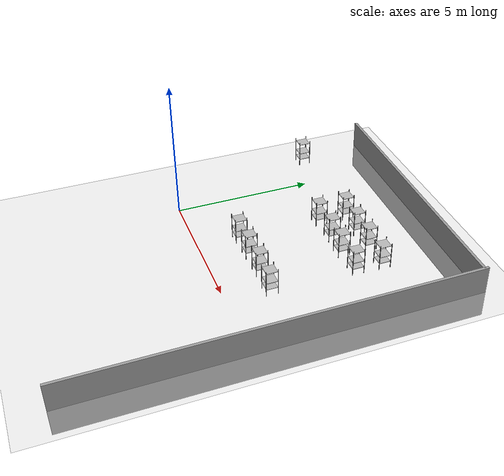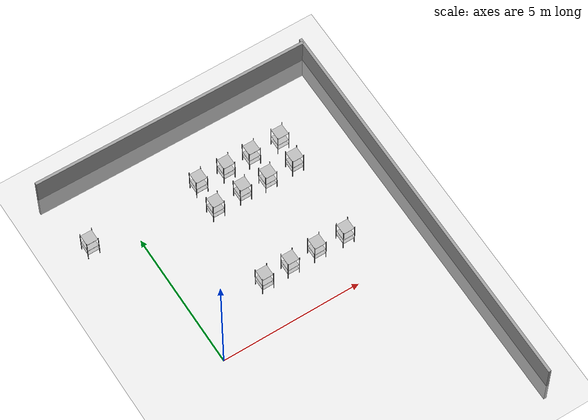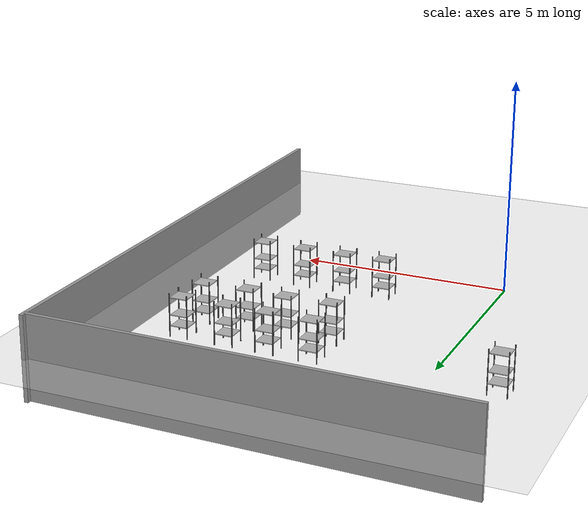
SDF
<sdf version="1.7">
 <world name="default">
  <model name="ground_plane">
   <static>1</static>
   <link name="link">
    <collision name="collision">
     <geometry><plane><normal>0 0 1</normal><size>100 100</size></plane></geometry>
     <surface><friction><ode><mu>100</mu><mu2>50</mu2></ode></friction></surface>
    </collision>
    <visual name="visual">
     <cast_shadows>0</cast_shadows>
     <geometry><plane><normal>0 0 1</normal><size>100 100</size></plane></geometry>
     <material>
      <script><uri>file://media/materials/scripts/gazebo.material</uri><name>Gazebo/Grey</name></script>
     </material>
    </visual>
   </link>
  </model>
  <model name="wall_1_clone_clone_clone_0_clone">
   <link name="wall">
    <visual name="visual">
     <geometry><box><size>14.1649 0.1 2</size></box></geometry>
     <material>
      <ambient>0.6 0.6 0.6 1</ambient>
      <shader type="pixel"/>
      <script><name>ModelPreview_1::wall::visual_MATERIAL_</name><uri>__default__</uri></script>
     </material>
    </visual>
    <collision name="collision">
     <geometry><box><size>14.1649 0.1 2</size></box></geometry>
     <surface>
      <friction>
       <ode><mu>1</mu><mu2>1</mu2><fdir1>0 0 0</fdir1><slip1>0</slip1><slip2>0</slip2></ode>
       <torsional>
        <coefficient>1</coefficient>
        <patch_radius>0</patch_radius>
        <surface_radius>0</surface_radius>
        <use_patch_radius>1</use_patch_radius>
        <ode><slip>0</slip></ode>
       </torsional>
      </friction>
      <bounce><restitution_coefficient>0</restitution_coefficient><threshold>1e+06</threshold></bounce>
      <contact>
       <collide_without_contact>0</collide_without_contact>
       <collide_without_contact_bitmask>1</collide_without_contact_bitmask>
       <collide_bitmask>1</collide_bitmask>
       <ode>
        <soft_cfm>0</soft_cfm>
        <soft_erp>0.2</soft_erp>
        <kp>1e+13</kp>
        <kd>1</kd>
        <max_vel>0.01</max_vel>
        <min_depth>0</min_depth>
       </ode>
       <bullet>
        <split_impulse>1</split_impulse>
        <split_impulse_penetration_threshold>-0.01</split_impulse_penetration_threshold>
        <soft_cfm>0</soft_cfm>
        <soft_erp>0.2</soft_erp>
        <kp>1e+13</kp>
        <kd>1</kd>
       </bullet>
      </contact>
     </surface>
    </collision>
   </link>
   <static>1</static>
   <pose>8 1 0 0 0 -1.5708</pose>
  </model>
  <model name="wall_1_clone_clone_clone_0_clone_0">
   <link name="wall">
    <visual name="visual">
     <geometry><box><size>10 0.1 2</size></box></geometry>
     <material>
      <ambient>0.6 0.6 0.6 1</ambient>
      <shader type="pixel"/>
      <script><name>ModelPreview_1::wall::visual_MATERIAL_</name><uri>__default__</uri></script>
     </material>
    </visual>
    <collision name="collision">
     <geometry><box><size>10 0.1 2</size></box></geometry>
     <surface>
      <friction>
       <ode><mu>1</mu><mu2>1</mu2><fdir1>0 0 0</fdir1><slip1>0</slip1><slip2>0</slip2></ode>
       <torsional>
        <coefficient>1</coefficient>
        <patch_radius>0</patch_radius>
        <surface_radius>0</surface_radius>
        <use_patch_radius>1</use_patch_radius>
        <ode><slip>0</slip></ode>
       </torsional>
      </friction>
      <bounce><restitution_coefficient>0</restitution_coefficient><threshold>1e+06</threshold></bounce>
      <contact>
       <collide_without_contact>0</collide_without_contact>
       <collide_without_contact_bitmask>1</collide_without_contact_bitmask>
       <collide_bitmask>1</collide_bitmask>
       <ode>
        <soft_cfm>0</soft_cfm>
        <soft_erp>0.2</soft_erp>
        <kp>1e+13</kp>
        <kd>1</kd>
        <max_vel>0.01</max_vel>
        <min_depth>0</min_depth>
       </ode>
       <bullet>
        <split_impulse>1</split_impulse>
        <split_impulse_penetration_threshold>-0.01</split_impulse_penetration_threshold>
        <soft_cfm>0</soft_cfm>
        <soft_erp>0.2</soft_erp>
        <kp>1e+13</kp>
        <kd>1</kd>
       </bullet>
      </contact>
     </surface>
    </collision>
   </link>
   <static>1</static>
   <pose>3 8 0 0 0 -0.012854</pose>
  </model>
  <model name="square_shelf_0_clone_7">
   <link name="link">
    <visual name="bottom_shelf_visual">
     <geometry><box><size>0.4 0.4 0.02</size></box></geometry>
     <pose>0 0 0.25 0 -0 0</pose>
     <material><ambient>0.6 0.6 0.6 1</ambient><diffuse>0.7 0.7 0.7 1</diffuse></material>
    </visual>
    <collision name="bottom_shelf_collision">
     <geometry><box><size>0.4 0.4 0.02</size></box></geometry>
     <pose>0 0 0.25 0 -0 0</pose>
    </collision>
    <visual name="middle_shelf_visual">
     <geometry><box><size>0.4 0.4 0.02</size></box></geometry>
     <pose>0 0 0.5 0 -0 0</pose>
     <material><ambient>0.6 0.6 0.6 1</ambient><diffuse>0.7 0.7 0.7 1</diffuse></material>
    </visual>
    <collision name="middle_shelf_collision">
     <geometry><box><size>0.4 0.4 0.02</size></box></geometry>
     <pose>0 0 0.5 0 -0 0</pose>
    </collision>
    <visual name="top_shelf_visual">
     <geometry><box><size>0.4 0.4 0.02</size></box></geometry>
     <pose>0 0 0.9 0 -0 0</pose>
     <material><ambient>0.6 0.6 0.6 1</ambient><diffuse>0.7 0.7 0.7 1</diffuse></material>
    </visual>
    <collision name="top_shelf_collision">
     <geometry><box><size>0.4 0.4 0.02</size></box></geometry>
     <pose>0 0 0.9 0 -0 0</pose>
    </collision>
    <visual name="left_support_visual">
     <geometry><box><size>0.02 0.02 1</size></box></geometry>
     <pose>-0.21 -0.21 0.5 0 -0 0</pose>
     <material><ambient>0.3 0.3 0.3 1</ambient><diffuse>0.3 0.3 0.3 1</diffuse></material>
    </visual>
    <collision name="left_support_collision">
     <geometry><box><size>0.02 0.02 1</size></box></geometry>
     <pose>-0.21 -0.21 0.5 0 -0 0</pose>
    </collision>
    <visual name="right_support_visual">
     <geometry><box><size>0.02 0.02 1</size></box></geometry>
     <pose>0.21 -0.21 0.5 0 -0 0</pose>
     <material><ambient>0.3 0.3 0.3 1</ambient><diffuse>0.3 0.3 0.3 1</diffuse></material>
    </visual>
    <collision name="right_support_collision">
     <geometry><box><size>0.02 0.02 1</size></box></geometry>
     <pose>0.21 -0.21 0.5 0 -0 0</pose>
    </collision>
    <visual name="front_left_support_visual">
     <geometry><box><size>0.02 0.02 1</size></box></geometry>
     <pose>-0.21 0.21 0.5 0 -0 0</pose>
     <material><ambient>0.3 0.3 0.3 1</ambient><diffuse>0.3 0.3 0.3 1</diffuse></material>
    </visual>
    <collision name="front_left_support_collision">
     <geometry><box><size>0.02 0.02 1</size></box></geometry>
     <pose>-0.21 0.21 0.5 0 -0 0</pose>
    </collision>
    <visual name="front_right_support_visual">
     <geometry><box><size>0.02 0.02 1</size></box></geometry>
     <pose>0.21 0.21 0.5 0 -0 0</pose>
     <material><ambient>0.3 0.3 0.3 1</ambient><diffuse>0.3 0.3 0.3 1</diffuse></material>
    </visual>
    <collision name="front_right_support_collision">
     <geometry><box><size>0.02 0.02 1</size></box></geometry>
     <pose>0.21 0.21 0.5 0 -0 0</pose>
    </collision>
    <inertial>
     <inertia><ixx>1</ixx><ixy>0</ixy><ixz>0</ixz><iyy>1</iyy><iyz>0</iyz><izz>1</izz></inertia>
     <mass>1</mass>
    </inertial>
   </link>
   <pose>-1.52316 5.53311 0.01 0 -0 0</pose>
  </model>
  <model name="square_shelf_0_clone_14">
   <link name="link">
    <visual name="bottom_shelf_visual">
     <geometry><box><size>0.4 0.4 0.02</size></box></geometry>
     <pose>0 0 0.25 0 -0 0</pose>
     <material><ambient>0.6 0.6 0.6 1</ambient><diffuse>0.7 0.7 0.7 1</diffuse></material>
    </visual>
    <collision name="bottom_shelf_collision">
     <geometry><box><size>0.4 0.4 0.02</size></box></geometry>
     <pose>0 0 0.25 0 -0 0</pose>
    </collision>
    <visual name="middle_shelf_visual">
     <geometry><box><size>0.4 0.4 0.02</size></box></geometry>
     <pose>0 0 0.5 0 -0 0</pose>
     <material><ambient>0.6 0.6 0.6 1</ambient><diffuse>0.7 0.7 0.7 1</diffuse></material>
    </visual>
    <collision name="middle_shelf_collision">
     <geometry><box><size>0.4 0.4 0.02</size></box></geometry>
     <pose>0 0 0.5 0 -0 0</pose>
    </collision>
    <visual name="top_shelf_visual">
     <geometry><box><size>0.4 0.4 0.02</size></box></geometry>
     <pose>0 0 0.9 0 -0 0</pose>
     <material><ambient>0.6 0.6 0.6 1</ambient><diffuse>0.7 0.7 0.7 1</diffuse></material>
    </visual>
    <collision name="top_shelf_collision">
     <geometry><box><size>0.4 0.4 0.02</size></box></geometry>
     <pose>0 0 0.9 0 -0 0</pose>
    </collision>
    <visual name="left_support_visual">
     <geometry><box><size>0.02 0.02 1</size></box></geometry>
     <pose>-0.21 -0.21 0.5 0 -0 0</pose>
     <material><ambient>0.3 0.3 0.3 1</ambient><diffuse>0.3 0.3 0.3 1</diffuse></material>
    </visual>
    <collision name="left_support_collision">
     <geometry><box><size>0.02 0.02 1</size></box></geometry>
     <pose>-0.21 -0.21 0.5 0 -0 0</pose>
    </collision>
    <visual name="right_support_visual">
     <geometry><box><size>0.02 0.02 1</size></box></geometry>
     <pose>0.21 -0.21 0.5 0 -0 0</pose>
     <material><ambient>0.3 0.3 0.3 1</ambient><diffuse>0.3 0.3 0.3 1</diffuse></material>
    </visual>
    <collision name="right_support_collision">
     <geometry><box><size>0.02 0.02 1</size></box></geometry>
     <pose>0.21 -0.21 0.5 0 -0 0</pose>
    </collision>
    <visual name="front_left_support_visual">
     <geometry><box><size>0.02 0.02 1</size></box></geometry>
     <pose>-0.21 0.21 0.5 0 -0 0</pose>
     <material><ambient>0.3 0.3 0.3 1</ambient><diffuse>0.3 0.3 0.3 1</diffuse></material>
    </visual>
    <collision name="front_left_support_collision">
     <geometry><box><size>0.02 0.02 1</size></box></geometry>
     <pose>-0.21 0.21 0.5 0 -0 0</pose>
    </collision>
    <visual name="front_right_support_visual">
     <geometry><box><size>0.02 0.02 1</size></box></geometry>
     <pose>0.21 0.21 0.5 0 -0 0</pose>
     <material><ambient>0.3 0.3 0.3 1</ambient><diffuse>0.3 0.3 0.3 1</diffuse></material>
    </visual>
    <collision name="front_right_support_collision">
     <geometry><box><size>0.02 0.02 1</size></box></geometry>
     <pose>0.21 0.21 0.5 0 -0 0</pose>
    </collision>
    <inertial>
     <inertia><ixx>1</ixx><ixy>0</ixy><ixz>0</ixz><iyy>1</iyy><iyz>0</iyz><izz>1</izz></inertia>
     <mass>1</mass>
    </inertial>
   </link>
   <pose>2.45961 1.52485 0.009999 1e-06 -0 0</pose>
  </model>
  <model name="square_shelf_0_clone_15">
   <link name="link">
    <visual name="bottom_shelf_visual">
     <geometry><box><size>0.4 0.4 0.02</size></box></geometry>
     <pose>0 0 0.25 0 -0 0</pose>
     <material><ambient>0.6 0.6 0.6 1</ambient><diffuse>0.7 0.7 0.7 1</diffuse></material>
    </visual>
    <collision name="bottom_shelf_collision">
     <geometry><box><size>0.4 0.4 0.02</size></box></geometry>
     <pose>0 0 0.25 0 -0 0</pose>
    </collision>
    <visual name="middle_shelf_visual">
     <geometry><box><size>0.4 0.4 0.02</size></box></geometry>
     <pose>0 0 0.5 0 -0 0</pose>
     <material><ambient>0.6 0.6 0.6 1</ambient><diffuse>0.7 0.7 0.7 1</diffuse></material>
    </visual>
    <collision name="middle_shelf_collision">
     <geometry><box><size>0.4 0.4 0.02</size></box></geometry>
     <pose>0 0 0.5 0 -0 0</pose>
    </collision>
    <visual name="top_shelf_visual">
     <geometry><box><size>0.4 0.4 0.02</size></box></geometry>
     <pose>0 0 0.9 0 -0 0</pose>
     <material><ambient>0.6 0.6 0.6 1</ambient><diffuse>0.7 0.7 0.7 1</diffuse></material>
    </visual>
    <collision name="top_shelf_collision">
     <geometry><box><size>0.4 0.4 0.02</size></box></geometry>
     <pose>0 0 0.9 0 -0 0</pose>
    </collision>
    <visual name="left_support_visual">
     <geometry><box><size>0.02 0.02 1</size></box></geometry>
     <pose>-0.21 -0.21 0.5 0 -0 0</pose>
     <material><ambient>0.3 0.3 0.3 1</ambient><diffuse>0.3 0.3 0.3 1</diffuse></material>
    </visual>
    <collision name="left_support_collision">
     <geometry><box><size>0.02 0.02 1</size></box></geometry>
     <pose>-0.21 -0.21 0.5 0 -0 0</pose>
    </collision>
    <visual name="right_support_visual">
     <geometry><box><size>0.02 0.02 1</size></box></geometry>
     <pose>0.21 -0.21 0.5 0 -0 0</pose>
     <material><ambient>0.3 0.3 0.3 1</ambient><diffuse>0.3 0.3 0.3 1</diffuse></material>
    </visual>
    <collision name="right_support_collision">
     <geometry><box><size>0.02 0.02 1</size></box></geometry>
     <pose>0.21 -0.21 0.5 0 -0 0</pose>
    </collision>
    <visual name="front_left_support_visual">
     <geometry><box><size>0.02 0.02 1</size></box></geometry>
     <pose>-0.21 0.21 0.5 0 -0 0</pose>
     <material><ambient>0.3 0.3 0.3 1</ambient><diffuse>0.3 0.3 0.3 1</diffuse></material>
    </visual>
    <collision name="front_left_support_collision">
     <geometry><box><size>0.02 0.02 1</size></box></geometry>
     <pose>-0.21 0.21 0.5 0 -0 0</pose>
    </collision>
    <visual name="front_right_support_visual">
     <geometry><box><size>0.02 0.02 1</size></box></geometry>
     <pose>0.21 0.21 0.5 0 -0 0</pose>
     <material><ambient>0.3 0.3 0.3 1</ambient><diffuse>0.3 0.3 0.3 1</diffuse></material>
    </visual>
    <collision name="front_right_support_collision">
     <geometry><box><size>0.02 0.02 1</size></box></geometry>
     <pose>0.21 0.21 0.5 0 -0 0</pose>
    </collision>
    <inertial>
     <inertia><ixx>1</ixx><ixy>0</ixy><ixz>0</ixz><iyy>1</iyy><iyz>0</iyz><izz>1</izz></inertia>
     <mass>1</mass>
    </inertial>
   </link>
   <pose>3.42871 1.55032 0.009999 1e-06 1e-06 0</pose>
  </model>
  <model name="square_shelf_0_clone_18">
   <link name="link">
    <visual name="bottom_shelf_visual">
     <geometry><box><size>0.4 0.4 0.02</size></box></geometry>
     <pose>0 0 0.25 0 -0 0</pose>
     <material><ambient>0.6 0.6 0.6 1</ambient><diffuse>0.7 0.7 0.7 1</diffuse></material>
    </visual>
    <collision name="bottom_shelf_collision">
     <geometry><box><size>0.4 0.4 0.02</size></box></geometry>
     <pose>0 0 0.25 0 -0 0</pose>
    </collision>
    <visual name="middle_shelf_visual">
     <geometry><box><size>0.4 0.4 0.02</size></box></geometry>
     <pose>0 0 0.5 0 -0 0</pose>
     <material><ambient>0.6 0.6 0.6 1</ambient><diffuse>0.7 0.7 0.7 1</diffuse></material>
    </visual>
    <collision name="middle_shelf_collision">
     <geometry><box><size>0.4 0.4 0.02</size></box></geometry>
     <pose>0 0 0.5 0 -0 0</pose>
    </collision>
    <visual name="top_shelf_visual">
     <geometry><box><size>0.4 0.4 0.02</size></box></geometry>
     <pose>0 0 0.9 0 -0 0</pose>
     <material><ambient>0.6 0.6 0.6 1</ambient><diffuse>0.7 0.7 0.7 1</diffuse></material>
    </visual>
    <collision name="top_shelf_collision">
     <geometry><box><size>0.4 0.4 0.02</size></box></geometry>
     <pose>0 0 0.9 0 -0 0</pose>
    </collision>
    <visual name="left_support_visual">
     <geometry><box><size>0.02 0.02 1</size></box></geometry>
     <pose>-0.21 -0.21 0.5 0 -0 0</pose>
     <material><ambient>0.3 0.3 0.3 1</ambient><diffuse>0.3 0.3 0.3 1</diffuse></material>
    </visual>
    <collision name="left_support_collision">
     <geometry><box><size>0.02 0.02 1</size></box></geometry>
     <pose>-0.21 -0.21 0.5 0 -0 0</pose>
    </collision>
    <visual name="right_support_visual">
     <geometry><box><size>0.02 0.02 1</size></box></geometry>
     <pose>0.21 -0.21 0.5 0 -0 0</pose>
     <material><ambient>0.3 0.3 0.3 1</ambient><diffuse>0.3 0.3 0.3 1</diffuse></material>
    </visual>
    <collision name="right_support_collision">
     <geometry><box><size>0.02 0.02 1</size></box></geometry>
     <pose>0.21 -0.21 0.5 0 -0 0</pose>
    </collision>
    <visual name="front_left_support_visual">
     <geometry><box><size>0.02 0.02 1</size></box></geometry>
     <pose>-0.21 0.21 0.5 0 -0 0</pose>
     <material><ambient>0.3 0.3 0.3 1</ambient><diffuse>0.3 0.3 0.3 1</diffuse></material>
    </visual>
    <collision name="front_left_support_collision">
     <geometry><box><size>0.02 0.02 1</size></box></geometry>
     <pose>-0.21 0.21 0.5 0 -0 0</pose>
    </collision>
    <visual name="front_right_support_visual">
     <geometry><box><size>0.02 0.02 1</size></box></geometry>
     <pose>0.21 0.21 0.5 0 -0 0</pose>
     <material><ambient>0.3 0.3 0.3 1</ambient><diffuse>0.3 0.3 0.3 1</diffuse></material>
    </visual>
    <collision name="front_right_support_collision">
     <geometry><box><size>0.02 0.02 1</size></box></geometry>
     <pose>0.21 0.21 0.5 0 -0 0</pose>
    </collision>
    <inertial>
     <inertia><ixx>1</ixx><ixy>0</ixy><ixz>0</ixz><iyy>1</iyy><iyz>0</iyz><izz>1</izz></inertia>
     <mass>1</mass>
    </inertial>
   </link>
   <pose>4.43444 1.5661 0.009991 -1e-06 -0 0</pose>
  </model>
  <model name="square_shelf_0_clone_19">
   <link name="link">
    <visual name="bottom_shelf_visual">
     <geometry><box><size>0.4 0.4 0.02</size></box></geometry>
     <pose>0 0 0.25 0 -0 0</pose>
     <material><ambient>0.6 0.6 0.6 1</ambient><diffuse>0.7 0.7 0.7 1</diffuse></material>
    </visual>
    <collision name="bottom_shelf_collision">
     <geometry><box><size>0.4 0.4 0.02</size></box></geometry>
     <pose>0 0 0.25 0 -0 0</pose>
    </collision>
    <visual name="middle_shelf_visual">
     <geometry><box><size>0.4 0.4 0.02</size></box></geometry>
     <pose>0 0 0.5 0 -0 0</pose>
     <material><ambient>0.6 0.6 0.6 1</ambient><diffuse>0.7 0.7 0.7 1</diffuse></material>
    </visual>
    <collision name="middle_shelf_collision">
     <geometry><box><size>0.4 0.4 0.02</size></box></geometry>
     <pose>0 0 0.5 0 -0 0</pose>
    </collision>
    <visual name="top_shelf_visual">
     <geometry><box><size>0.4 0.4 0.02</size></box></geometry>
     <pose>0 0 0.9 0 -0 0</pose>
     <material><ambient>0.6 0.6 0.6 1</ambient><diffuse>0.7 0.7 0.7 1</diffuse></material>
    </visual>
    <collision name="top_shelf_collision">
     <geometry><box><size>0.4 0.4 0.02</size></box></geometry>
     <pose>0 0 0.9 0 -0 0</pose>
    </collision>
    <visual name="left_support_visual">
     <geometry><box><size>0.02 0.02 1</size></box></geometry>
     <pose>-0.21 -0.21 0.5 0 -0 0</pose>
     <material><ambient>0.3 0.3 0.3 1</ambient><diffuse>0.3 0.3 0.3 1</diffuse></material>
    </visual>
    <collision name="left_support_collision">
     <geometry><box><size>0.02 0.02 1</size></box></geometry>
     <pose>-0.21 -0.21 0.5 0 -0 0</pose>
    </collision>
    <visual name="right_support_visual">
     <geometry><box><size>0.02 0.02 1</size></box></geometry>
     <pose>0.21 -0.21 0.5 0 -0 0</pose>
     <material><ambient>0.3 0.3 0.3 1</ambient><diffuse>0.3 0.3 0.3 1</diffuse></material>
    </visual>
    <collision name="right_support_collision">
     <geometry><box><size>0.02 0.02 1</size></box></geometry>
     <pose>0.21 -0.21 0.5 0 -0 0</pose>
    </collision>
    <visual name="front_left_support_visual">
     <geometry><box><size>0.02 0.02 1</size></box></geometry>
     <pose>-0.21 0.21 0.5 0 -0 0</pose>
     <material><ambient>0.3 0.3 0.3 1</ambient><diffuse>0.3 0.3 0.3 1</diffuse></material>
    </visual>
    <collision name="front_left_support_collision">
     <geometry><box><size>0.02 0.02 1</size></box></geometry>
     <pose>-0.21 0.21 0.5 0 -0 0</pose>
    </collision>
    <visual name="front_right_support_visual">
     <geometry><box><size>0.02 0.02 1</size></box></geometry>
     <pose>0.21 0.21 0.5 0 -0 0</pose>
     <material><ambient>0.3 0.3 0.3 1</ambient><diffuse>0.3 0.3 0.3 1</diffuse></material>
    </visual>
    <collision name="front_right_support_collision">
     <geometry><box><size>0.02 0.02 1</size></box></geometry>
     <pose>0.21 0.21 0.5 0 -0 0</pose>
    </collision>
    <inertial>
     <inertia><ixx>1</ixx><ixy>0</ixy><ixz>0</ixz><iyy>1</iyy><iyz>0</iyz><izz>1</izz></inertia>
     <mass>1</mass>
    </inertial>
   </link>
   <pose>5.48401 1.52954 0.009999 1e-06 -0 0</pose>
  </model>
  <model name="square_shelf_0_clone_21">
   <link name="link">
    <visual name="bottom_shelf_visual">
     <geometry><box><size>0.4 0.4 0.02</size></box></geometry>
     <pose>0 0 0.25 0 -0 0</pose>
     <material><ambient>0.6 0.6 0.6 1</ambient><diffuse>0.7 0.7 0.7 1</diffuse></material>
    </visual>
    <collision name="bottom_shelf_collision">
     <geometry><box><size>0.4 0.4 0.02</size></box></geometry>
     <pose>0 0 0.25 0 -0 0</pose>
    </collision>
    <visual name="middle_shelf_visual">
     <geometry><box><size>0.4 0.4 0.02</size></box></geometry>
     <pose>0 0 0.5 0 -0 0</pose>
     <material><ambient>0.6 0.6 0.6 1</ambient><diffuse>0.7 0.7 0.7 1</diffuse></material>
    </visual>
    <collision name="middle_shelf_collision">
     <geometry><box><size>0.4 0.4 0.02</size></box></geometry>
     <pose>0 0 0.5 0 -0 0</pose>
    </collision>
    <visual name="top_shelf_visual">
     <geometry><box><size>0.4 0.4 0.02</size></box></geometry>
     <pose>0 0 0.9 0 -0 0</pose>
     <material><ambient>0.6 0.6 0.6 1</ambient><diffuse>0.7 0.7 0.7 1</diffuse></material>
    </visual>
    <collision name="top_shelf_collision">
     <geometry><box><size>0.4 0.4 0.02</size></box></geometry>
     <pose>0 0 0.9 0 -0 0</pose>
    </collision>
    <visual name="left_support_visual">
     <geometry><box><size>0.02 0.02 1</size></box></geometry>
     <pose>-0.21 -0.21 0.5 0 -0 0</pose>
     <material><ambient>0.3 0.3 0.3 1</ambient><diffuse>0.3 0.3 0.3 1</diffuse></material>
    </visual>
    <collision name="left_support_collision">
     <geometry><box><size>0.02 0.02 1</size></box></geometry>
     <pose>-0.21 -0.21 0.5 0 -0 0</pose>
    </collision>
    <visual name="right_support_visual">
     <geometry><box><size>0.02 0.02 1</size></box></geometry>
     <pose>0.21 -0.21 0.5 0 -0 0</pose>
     <material><ambient>0.3 0.3 0.3 1</ambient><diffuse>0.3 0.3 0.3 1</diffuse></material>
    </visual>
    <collision name="right_support_collision">
     <geometry><box><size>0.02 0.02 1</size></box></geometry>
     <pose>0.21 -0.21 0.5 0 -0 0</pose>
    </collision>
    <visual name="front_left_support_visual">
     <geometry><box><size>0.02 0.02 1</size></box></geometry>
     <pose>-0.21 0.21 0.5 0 -0 0</pose>
     <material><ambient>0.3 0.3 0.3 1</ambient><diffuse>0.3 0.3 0.3 1</diffuse></material>
    </visual>
    <collision name="front_left_support_collision">
     <geometry><box><size>0.02 0.02 1</size></box></geometry>
     <pose>-0.21 0.21 0.5 0 -0 0</pose>
    </collision>
    <visual name="front_right_support_visual">
     <geometry><box><size>0.02 0.02 1</size></box></geometry>
     <pose>0.21 0.21 0.5 0 -0 0</pose>
     <material><ambient>0.3 0.3 0.3 1</ambient><diffuse>0.3 0.3 0.3 1</diffuse></material>
    </visual>
    <collision name="front_right_support_collision">
     <geometry><box><size>0.02 0.02 1</size></box></geometry>
     <pose>0.21 0.21 0.5 0 -0 0</pose>
    </collision>
    <inertial>
     <inertia><ixx>1</ixx><ixy>0</ixy><ixz>0</ixz><iyy>1</iyy><iyz>0</iyz><izz>1</izz></inertia>
     <mass>1</mass>
    </inertial>
   </link>
   <pose>2.51858 4.53258 0.009999 1e-06 -0 0</pose>
  </model>
  <model name="square_shelf_0_clone_22">
   <link name="link">
    <visual name="bottom_shelf_visual">
     <geometry><box><size>0.4 0.4 0.02</size></box></geometry>
     <pose>0 0 0.25 0 -0 0</pose>
     <material><ambient>0.6 0.6 0.6 1</ambient><diffuse>0.7 0.7 0.7 1</diffuse></material>
    </visual>
    <collision name="bottom_shelf_collision">
     <geometry><box><size>0.4 0.4 0.02</size></box></geometry>
     <pose>0 0 0.25 0 -0 0</pose>
    </collision>
    <visual name="middle_shelf_visual">
     <geometry><box><size>0.4 0.4 0.02</size></box></geometry>
     <pose>0 0 0.5 0 -0 0</pose>
     <material><ambient>0.6 0.6 0.6 1</ambient><diffuse>0.7 0.7 0.7 1</diffuse></material>
    </visual>
    <collision name="middle_shelf_collision">
     <geometry><box><size>0.4 0.4 0.02</size></box></geometry>
     <pose>0 0 0.5 0 -0 0</pose>
    </collision>
    <visual name="top_shelf_visual">
     <geometry><box><size>0.4 0.4 0.02</size></box></geometry>
     <pose>0 0 0.9 0 -0 0</pose>
     <material><ambient>0.6 0.6 0.6 1</ambient><diffuse>0.7 0.7 0.7 1</diffuse></material>
    </visual>
    <collision name="top_shelf_collision">
     <geometry><box><size>0.4 0.4 0.02</size></box></geometry>
     <pose>0 0 0.9 0 -0 0</pose>
    </collision>
    <visual name="left_support_visual">
     <geometry><box><size>0.02 0.02 1</size></box></geometry>
     <pose>-0.21 -0.21 0.5 0 -0 0</pose>
     <material><ambient>0.3 0.3 0.3 1</ambient><diffuse>0.3 0.3 0.3 1</diffuse></material>
    </visual>
    <collision name="left_support_collision">
     <geometry><box><size>0.02 0.02 1</size></box></geometry>
     <pose>-0.21 -0.21 0.5 0 -0 0</pose>
    </collision>
    <visual name="right_support_visual">
     <geometry><box><size>0.02 0.02 1</size></box></geometry>
     <pose>0.21 -0.21 0.5 0 -0 0</pose>
     <material><ambient>0.3 0.3 0.3 1</ambient><diffuse>0.3 0.3 0.3 1</diffuse></material>
    </visual>
    <collision name="right_support_collision">
     <geometry><box><size>0.02 0.02 1</size></box></geometry>
     <pose>0.21 -0.21 0.5 0 -0 0</pose>
    </collision>
    <visual name="front_left_support_visual">
     <geometry><box><size>0.02 0.02 1</size></box></geometry>
     <pose>-0.21 0.21 0.5 0 -0 0</pose>
     <material><ambient>0.3 0.3 0.3 1</ambient><diffuse>0.3 0.3 0.3 1</diffuse></material>
    </visual>
    <collision name="front_left_support_collision">
     <geometry><box><size>0.02 0.02 1</size></box></geometry>
     <pose>-0.21 0.21 0.5 0 -0 0</pose>
    </collision>
    <visual name="front_right_support_visual">
     <geometry><box><size>0.02 0.02 1</size></box></geometry>
     <pose>0.21 0.21 0.5 0 -0 0</pose>
     <material><ambient>0.3 0.3 0.3 1</ambient><diffuse>0.3 0.3 0.3 1</diffuse></material>
    </visual>
    <collision name="front_right_support_collision">
     <geometry><box><size>0.02 0.02 1</size></box></geometry>
     <pose>0.21 0.21 0.5 0 -0 0</pose>
    </collision>
    <inertial>
     <inertia><ixx>1</ixx><ixy>0</ixy><ixz>0</ixz><iyy>1</iyy><iyz>0</iyz><izz>1</izz></inertia>
     <mass>1</mass>
    </inertial>
   </link>
   <pose>2.52908 5.56848 0.009992 1e-06 1e-06 0</pose>
  </model>
  <model name="square_shelf_0_clone_23">
   <link name="link">
    <visual name="bottom_shelf_visual">
     <geometry><box><size>0.4 0.4 0.02</size></box></geometry>
     <pose>0 0 0.25 0 -0 0</pose>
     <material><ambient>0.6 0.6 0.6 1</ambient><diffuse>0.7 0.7 0.7 1</diffuse></material>
    </visual>
    <collision name="bottom_shelf_collision">
     <geometry><box><size>0.4 0.4 0.02</size></box></geometry>
     <pose>0 0 0.25 0 -0 0</pose>
    </collision>
    <visual name="middle_shelf_visual">
     <geometry><box><size>0.4 0.4 0.02</size></box></geometry>
     <pose>0 0 0.5 0 -0 0</pose>
     <material><ambient>0.6 0.6 0.6 1</ambient><diffuse>0.7 0.7 0.7 1</diffuse></material>
    </visual>
    <collision name="middle_shelf_collision">
     <geometry><box><size>0.4 0.4 0.02</size></box></geometry>
     <pose>0 0 0.5 0 -0 0</pose>
    </collision>
    <visual name="top_shelf_visual">
     <geometry><box><size>0.4 0.4 0.02</size></box></geometry>
     <pose>0 0 0.9 0 -0 0</pose>
     <material><ambient>0.6 0.6 0.6 1</ambient><diffuse>0.7 0.7 0.7 1</diffuse></material>
    </visual>
    <collision name="top_shelf_collision">
     <geometry><box><size>0.4 0.4 0.02</size></box></geometry>
     <pose>0 0 0.9 0 -0 0</pose>
    </collision>
    <visual name="left_support_visual">
     <geometry><box><size>0.02 0.02 1</size></box></geometry>
     <pose>-0.21 -0.21 0.5 0 -0 0</pose>
     <material><ambient>0.3 0.3 0.3 1</ambient><diffuse>0.3 0.3 0.3 1</diffuse></material>
    </visual>
    <collision name="left_support_collision">
     <geometry><box><size>0.02 0.02 1</size></box></geometry>
     <pose>-0.21 -0.21 0.5 0 -0 0</pose>
    </collision>
    <visual name="right_support_visual">
     <geometry><box><size>0.02 0.02 1</size></box></geometry>
     <pose>0.21 -0.21 0.5 0 -0 0</pose>
     <material><ambient>0.3 0.3 0.3 1</ambient><diffuse>0.3 0.3 0.3 1</diffuse></material>
    </visual>
    <collision name="right_support_collision">
     <geometry><box><size>0.02 0.02 1</size></box></geometry>
     <pose>0.21 -0.21 0.5 0 -0 0</pose>
    </collision>
    <visual name="front_left_support_visual">
     <geometry><box><size>0.02 0.02 1</size></box></geometry>
     <pose>-0.21 0.21 0.5 0 -0 0</pose>
     <material><ambient>0.3 0.3 0.3 1</ambient><diffuse>0.3 0.3 0.3 1</diffuse></material>
    </visual>
    <collision name="front_left_support_collision">
     <geometry><box><size>0.02 0.02 1</size></box></geometry>
     <pose>-0.21 0.21 0.5 0 -0 0</pose>
    </collision>
    <visual name="front_right_support_visual">
     <geometry><box><size>0.02 0.02 1</size></box></geometry>
     <pose>0.21 0.21 0.5 0 -0 0</pose>
     <material><ambient>0.3 0.3 0.3 1</ambient><diffuse>0.3 0.3 0.3 1</diffuse></material>
    </visual>
    <collision name="front_right_support_collision">
     <geometry><box><size>0.02 0.02 1</size></box></geometry>
     <pose>0.21 0.21 0.5 0 -0 0</pose>
    </collision>
    <inertial>
     <inertia><ixx>1</ixx><ixy>0</ixy><ixz>0</ixz><iyy>1</iyy><iyz>0</iyz><izz>1</izz></inertia>
     <mass>1</mass>
    </inertial>
   </link>
   <pose>3.5415 5.5436 0.01 0 1e-06 0</pose>
  </model>
  <model name="square_shelf_0_clone_24">
   <link name="link">
    <visual name="bottom_shelf_visual">
     <geometry><box><size>0.4 0.4 0.02</size></box></geometry>
     <pose>0 0 0.25 0 -0 0</pose>
     <material><ambient>0.6 0.6 0.6 1</ambient><diffuse>0.7 0.7 0.7 1</diffuse></material>
    </visual>
    <collision name="bottom_shelf_collision">
     <geometry><box><size>0.4 0.4 0.02</size></box></geometry>
     <pose>0 0 0.25 0 -0 0</pose>
    </collision>
    <visual name="middle_shelf_visual">
     <geometry><box><size>0.4 0.4 0.02</size></box></geometry>
     <pose>0 0 0.5 0 -0 0</pose>
     <material><ambient>0.6 0.6 0.6 1</ambient><diffuse>0.7 0.7 0.7 1</diffuse></material>
    </visual>
    <collision name="middle_shelf_collision">
     <geometry><box><size>0.4 0.4 0.02</size></box></geometry>
     <pose>0 0 0.5 0 -0 0</pose>
    </collision>
    <visual name="top_shelf_visual">
     <geometry><box><size>0.4 0.4 0.02</size></box></geometry>
     <pose>0 0 0.9 0 -0 0</pose>
     <material><ambient>0.6 0.6 0.6 1</ambient><diffuse>0.7 0.7 0.7 1</diffuse></material>
    </visual>
    <collision name="top_shelf_collision">
     <geometry><box><size>0.4 0.4 0.02</size></box></geometry>
     <pose>0 0 0.9 0 -0 0</pose>
    </collision>
    <visual name="left_support_visual">
     <geometry><box><size>0.02 0.02 1</size></box></geometry>
     <pose>-0.21 -0.21 0.5 0 -0 0</pose>
     <material><ambient>0.3 0.3 0.3 1</ambient><diffuse>0.3 0.3 0.3 1</diffuse></material>
    </visual>
    <collision name="left_support_collision">
     <geometry><box><size>0.02 0.02 1</size></box></geometry>
     <pose>-0.21 -0.21 0.5 0 -0 0</pose>
    </collision>
    <visual name="right_support_visual">
     <geometry><box><size>0.02 0.02 1</size></box></geometry>
     <pose>0.21 -0.21 0.5 0 -0 0</pose>
     <material><ambient>0.3 0.3 0.3 1</ambient><diffuse>0.3 0.3 0.3 1</diffuse></material>
    </visual>
    <collision name="right_support_collision">
     <geometry><box><size>0.02 0.02 1</size></box></geometry>
     <pose>0.21 -0.21 0.5 0 -0 0</pose>
    </collision>
    <visual name="front_left_support_visual">
     <geometry><box><size>0.02 0.02 1</size></box></geometry>
     <pose>-0.21 0.21 0.5 0 -0 0</pose>
     <material><ambient>0.3 0.3 0.3 1</ambient><diffuse>0.3 0.3 0.3 1</diffuse></material>
    </visual>
    <collision name="front_left_support_collision">
     <geometry><box><size>0.02 0.02 1</size></box></geometry>
     <pose>-0.21 0.21 0.5 0 -0 0</pose>
    </collision>
    <visual name="front_right_support_visual">
     <geometry><box><size>0.02 0.02 1</size></box></geometry>
     <pose>0.21 0.21 0.5 0 -0 0</pose>
     <material><ambient>0.3 0.3 0.3 1</ambient><diffuse>0.3 0.3 0.3 1</diffuse></material>
    </visual>
    <collision name="front_right_support_collision">
     <geometry><box><size>0.02 0.02 1</size></box></geometry>
     <pose>0.21 0.21 0.5 0 -0 0</pose>
    </collision>
    <inertial>
     <inertia><ixx>1</ixx><ixy>0</ixy><ixz>0</ixz><iyy>1</iyy><iyz>0</iyz><izz>1</izz></inertia>
     <mass>1</mass>
    </inertial>
   </link>
   <pose>3.55957 4.57677 0.009999 -1e-06 -1e-06 0</pose>
  </model>
  <model name="square_shelf_0_clone_25">
   <link name="link">
    <visual name="bottom_shelf_visual">
     <geometry><box><size>0.4 0.4 0.02</size></box></geometry>
     <pose>0 0 0.25 0 -0 0</pose>
     <material><ambient>0.6 0.6 0.6 1</ambient><diffuse>0.7 0.7 0.7 1</diffuse></material>
    </visual>
    <collision name="bottom_shelf_collision">
     <geometry><box><size>0.4 0.4 0.02</size></box></geometry>
     <pose>0 0 0.25 0 -0 0</pose>
    </collision>
    <visual name="middle_shelf_visual">
     <geometry><box><size>0.4 0.4 0.02</size></box></geometry>
     <pose>0 0 0.5 0 -0 0</pose>
     <material><ambient>0.6 0.6 0.6 1</ambient><diffuse>0.7 0.7 0.7 1</diffuse></material>
    </visual>
    <collision name="middle_shelf_collision">
     <geometry><box><size>0.4 0.4 0.02</size></box></geometry>
     <pose>0 0 0.5 0 -0 0</pose>
    </collision>
    <visual name="top_shelf_visual">
     <geometry><box><size>0.4 0.4 0.02</size></box></geometry>
     <pose>0 0 0.9 0 -0 0</pose>
     <material><ambient>0.6 0.6 0.6 1</ambient><diffuse>0.7 0.7 0.7 1</diffuse></material>
    </visual>
    <collision name="top_shelf_collision">
     <geometry><box><size>0.4 0.4 0.02</size></box></geometry>
     <pose>0 0 0.9 0 -0 0</pose>
    </collision>
    <visual name="left_support_visual">
     <geometry><box><size>0.02 0.02 1</size></box></geometry>
     <pose>-0.21 -0.21 0.5 0 -0 0</pose>
     <material><ambient>0.3 0.3 0.3 1</ambient><diffuse>0.3 0.3 0.3 1</diffuse></material>
    </visual>
    <collision name="left_support_collision">
     <geometry><box><size>0.02 0.02 1</size></box></geometry>
     <pose>-0.21 -0.21 0.5 0 -0 0</pose>
    </collision>
    <visual name="right_support_visual">
     <geometry><box><size>0.02 0.02 1</size></box></geometry>
     <pose>0.21 -0.21 0.5 0 -0 0</pose>
     <material><ambient>0.3 0.3 0.3 1</ambient><diffuse>0.3 0.3 0.3 1</diffuse></material>
    </visual>
    <collision name="right_support_collision">
     <geometry><box><size>0.02 0.02 1</size></box></geometry>
     <pose>0.21 -0.21 0.5 0 -0 0</pose>
    </collision>
    <visual name="front_left_support_visual">
     <geometry><box><size>0.02 0.02 1</size></box></geometry>
     <pose>-0.21 0.21 0.5 0 -0 0</pose>
     <material><ambient>0.3 0.3 0.3 1</ambient><diffuse>0.3 0.3 0.3 1</diffuse></material>
    </visual>
    <collision name="front_left_support_collision">
     <geometry><box><size>0.02 0.02 1</size></box></geometry>
     <pose>-0.21 0.21 0.5 0 -0 0</pose>
    </collision>
    <visual name="front_right_support_visual">
     <geometry><box><size>0.02 0.02 1</size></box></geometry>
     <pose>0.21 0.21 0.5 0 -0 0</pose>
     <material><ambient>0.3 0.3 0.3 1</ambient><diffuse>0.3 0.3 0.3 1</diffuse></material>
    </visual>
    <collision name="front_right_support_collision">
     <geometry><box><size>0.02 0.02 1</size></box></geometry>
     <pose>0.21 0.21 0.5 0 -0 0</pose>
    </collision>
    <inertial>
     <inertia><ixx>1</ixx><ixy>0</ixy><ixz>0</ixz><iyy>1</iyy><iyz>0</iyz><izz>1</izz></inertia>
     <mass>1</mass>
    </inertial>
   </link>
   <pose>4.48521 4.52882 0.009999 1e-06 -0 0</pose>
  </model>
  <model name="square_shelf_0_clone_26">
   <link name="link">
    <visual name="bottom_shelf_visual">
     <geometry><box><size>0.4 0.4 0.02</size></box></geometry>
     <pose>0 0 0.25 0 -0 0</pose>
     <material><ambient>0.6 0.6 0.6 1</ambient><diffuse>0.7 0.7 0.7 1</diffuse></material>
    </visual>
    <collision name="bottom_shelf_collision">
     <geometry><box><size>0.4 0.4 0.02</size></box></geometry>
     <pose>0 0 0.25 0 -0 0</pose>
    </collision>
    <visual name="middle_shelf_visual">
     <geometry><box><size>0.4 0.4 0.02</size></box></geometry>
     <pose>0 0 0.5 0 -0 0</pose>
     <material><ambient>0.6 0.6 0.6 1</ambient><diffuse>0.7 0.7 0.7 1</diffuse></material>
    </visual>
    <collision name="middle_shelf_collision">
     <geometry><box><size>0.4 0.4 0.02</size></box></geometry>
     <pose>0 0 0.5 0 -0 0</pose>
    </collision>
    <visual name="top_shelf_visual">
     <geometry><box><size>0.4 0.4 0.02</size></box></geometry>
     <pose>0 0 0.9 0 -0 0</pose>
     <material><ambient>0.6 0.6 0.6 1</ambient><diffuse>0.7 0.7 0.7 1</diffuse></material>
    </visual>
    <collision name="top_shelf_collision">
     <geometry><box><size>0.4 0.4 0.02</size></box></geometry>
     <pose>0 0 0.9 0 -0 0</pose>
    </collision>
    <visual name="left_support_visual">
     <geometry><box><size>0.02 0.02 1</size></box></geometry>
     <pose>-0.21 -0.21 0.5 0 -0 0</pose>
     <material><ambient>0.3 0.3 0.3 1</ambient><diffuse>0.3 0.3 0.3 1</diffuse></material>
    </visual>
    <collision name="left_support_collision">
     <geometry><box><size>0.02 0.02 1</size></box></geometry>
     <pose>-0.21 -0.21 0.5 0 -0 0</pose>
    </collision>
    <visual name="right_support_visual">
     <geometry><box><size>0.02 0.02 1</size></box></geometry>
     <pose>0.21 -0.21 0.5 0 -0 0</pose>
     <material><ambient>0.3 0.3 0.3 1</ambient><diffuse>0.3 0.3 0.3 1</diffuse></material>
    </visual>
    <collision name="right_support_collision">
     <geometry><box><size>0.02 0.02 1</size></box></geometry>
     <pose>0.21 -0.21 0.5 0 -0 0</pose>
    </collision>
    <visual name="front_left_support_visual">
     <geometry><box><size>0.02 0.02 1</size></box></geometry>
     <pose>-0.21 0.21 0.5 0 -0 0</pose>
     <material><ambient>0.3 0.3 0.3 1</ambient><diffuse>0.3 0.3 0.3 1</diffuse></material>
    </visual>
    <collision name="front_left_support_collision">
     <geometry><box><size>0.02 0.02 1</size></box></geometry>
     <pose>-0.21 0.21 0.5 0 -0 0</pose>
    </collision>
    <visual name="front_right_support_visual">
     <geometry><box><size>0.02 0.02 1</size></box></geometry>
     <pose>0.21 0.21 0.5 0 -0 0</pose>
     <material><ambient>0.3 0.3 0.3 1</ambient><diffuse>0.3 0.3 0.3 1</diffuse></material>
    </visual>
    <collision name="front_right_support_collision">
     <geometry><box><size>0.02 0.02 1</size></box></geometry>
     <pose>0.21 0.21 0.5 0 -0 0</pose>
    </collision>
    <inertial>
     <inertia><ixx>1</ixx><ixy>0</ixy><ixz>0</ixz><iyy>1</iyy><iyz>0</iyz><izz>1</izz></inertia>
     <mass>1</mass>
    </inertial>
   </link>
   <pose>4.50118 5.53976 0.009999 1e-06 -0 0</pose>
  </model>
  <model name="square_shelf_0_clone_27">
   <link name="link">
    <visual name="bottom_shelf_visual">
     <geometry><box><size>0.4 0.4 0.02</size></box></geometry>
     <pose>0 0 0.25 0 -0 0</pose>
     <material><ambient>0.6 0.6 0.6 1</ambient><diffuse>0.7 0.7 0.7 1</diffuse></material>
    </visual>
    <collision name="bottom_shelf_collision">
     <geometry><box><size>0.4 0.4 0.02</size></box></geometry>
     <pose>0 0 0.25 0 -0 0</pose>
    </collision>
    <visual name="middle_shelf_visual">
     <geometry><box><size>0.4 0.4 0.02</size></box></geometry>
     <pose>0 0 0.5 0 -0 0</pose>
     <material><ambient>0.6 0.6 0.6 1</ambient><diffuse>0.7 0.7 0.7 1</diffuse></material>
    </visual>
    <collision name="middle_shelf_collision">
     <geometry><box><size>0.4 0.4 0.02</size></box></geometry>
     <pose>0 0 0.5 0 -0 0</pose>
    </collision>
    <visual name="top_shelf_visual">
     <geometry><box><size>0.4 0.4 0.02</size></box></geometry>
     <pose>0 0 0.9 0 -0 0</pose>
     <material><ambient>0.6 0.6 0.6 1</ambient><diffuse>0.7 0.7 0.7 1</diffuse></material>
    </visual>
    <collision name="top_shelf_collision">
     <geometry><box><size>0.4 0.4 0.02</size></box></geometry>
     <pose>0 0 0.9 0 -0 0</pose>
    </collision>
    <visual name="left_support_visual">
     <geometry><box><size>0.02 0.02 1</size></box></geometry>
     <pose>-0.21 -0.21 0.5 0 -0 0</pose>
     <material><ambient>0.3 0.3 0.3 1</ambient><diffuse>0.3 0.3 0.3 1</diffuse></material>
    </visual>
    <collision name="left_support_collision">
     <geometry><box><size>0.02 0.02 1</size></box></geometry>
     <pose>-0.21 -0.21 0.5 0 -0 0</pose>
    </collision>
    <visual name="right_support_visual">
     <geometry><box><size>0.02 0.02 1</size></box></geometry>
     <pose>0.21 -0.21 0.5 0 -0 0</pose>
     <material><ambient>0.3 0.3 0.3 1</ambient><diffuse>0.3 0.3 0.3 1</diffuse></material>
    </visual>
    <collision name="right_support_collision">
     <geometry><box><size>0.02 0.02 1</size></box></geometry>
     <pose>0.21 -0.21 0.5 0 -0 0</pose>
    </collision>
    <visual name="front_left_support_visual">
     <geometry><box><size>0.02 0.02 1</size></box></geometry>
     <pose>-0.21 0.21 0.5 0 -0 0</pose>
     <material><ambient>0.3 0.3 0.3 1</ambient><diffuse>0.3 0.3 0.3 1</diffuse></material>
    </visual>
    <collision name="front_left_support_collision">
     <geometry><box><size>0.02 0.02 1</size></box></geometry>
     <pose>-0.21 0.21 0.5 0 -0 0</pose>
    </collision>
    <visual name="front_right_support_visual">
     <geometry><box><size>0.02 0.02 1</size></box></geometry>
     <pose>0.21 0.21 0.5 0 -0 0</pose>
     <material><ambient>0.3 0.3 0.3 1</ambient><diffuse>0.3 0.3 0.3 1</diffuse></material>
    </visual>
    <collision name="front_right_support_collision">
     <geometry><box><size>0.02 0.02 1</size></box></geometry>
     <pose>0.21 0.21 0.5 0 -0 0</pose>
    </collision>
    <inertial>
     <inertia><ixx>1</ixx><ixy>0</ixy><ixz>0</ixz><iyy>1</iyy><iyz>0</iyz><izz>1</izz></inertia>
     <mass>1</mass>
    </inertial>
   </link>
   <pose>5.58214 5.53665 0.009999 1e-06 -0 0</pose>
  </model>
  <model name="square_shelf_0_clone_28">
   <link name="link">
    <visual name="bottom_shelf_visual">
     <geometry><box><size>0.4 0.4 0.02</size></box></geometry>
     <pose>0 0 0.25 0 -0 0</pose>
     <material><ambient>0.6 0.6 0.6 1</ambient><diffuse>0.7 0.7 0.7 1</diffuse></material>
    </visual>
    <collision name="bottom_shelf_collision">
     <geometry><box><size>0.4 0.4 0.02</size></box></geometry>
     <pose>0 0 0.25 0 -0 0</pose>
    </collision>
    <visual name="middle_shelf_visual">
     <geometry><box><size>0.4 0.4 0.02</size></box></geometry>
     <pose>0 0 0.5 0 -0 0</pose>
     <material><ambient>0.6 0.6 0.6 1</ambient><diffuse>0.7 0.7 0.7 1</diffuse></material>
    </visual>
    <collision name="middle_shelf_collision">
     <geometry><box><size>0.4 0.4 0.02</size></box></geometry>
     <pose>0 0 0.5 0 -0 0</pose>
    </collision>
    <visual name="top_shelf_visual">
     <geometry><box><size>0.4 0.4 0.02</size></box></geometry>
     <pose>0 0 0.9 0 -0 0</pose>
     <material><ambient>0.6 0.6 0.6 1</ambient><diffuse>0.7 0.7 0.7 1</diffuse></material>
    </visual>
    <collision name="top_shelf_collision">
     <geometry><box><size>0.4 0.4 0.02</size></box></geometry>
     <pose>0 0 0.9 0 -0 0</pose>
    </collision>
    <visual name="left_support_visual">
     <geometry><box><size>0.02 0.02 1</size></box></geometry>
     <pose>-0.21 -0.21 0.5 0 -0 0</pose>
     <material><ambient>0.3 0.3 0.3 1</ambient><diffuse>0.3 0.3 0.3 1</diffuse></material>
    </visual>
    <collision name="left_support_collision">
     <geometry><box><size>0.02 0.02 1</size></box></geometry>
     <pose>-0.21 -0.21 0.5 0 -0 0</pose>
    </collision>
    <visual name="right_support_visual">
     <geometry><box><size>0.02 0.02 1</size></box></geometry>
     <pose>0.21 -0.21 0.5 0 -0 0</pose>
     <material><ambient>0.3 0.3 0.3 1</ambient><diffuse>0.3 0.3 0.3 1</diffuse></material>
    </visual>
    <collision name="right_support_collision">
     <geometry><box><size>0.02 0.02 1</size></box></geometry>
     <pose>0.21 -0.21 0.5 0 -0 0</pose>
    </collision>
    <visual name="front_left_support_visual">
     <geometry><box><size>0.02 0.02 1</size></box></geometry>
     <pose>-0.21 0.21 0.5 0 -0 0</pose>
     <material><ambient>0.3 0.3 0.3 1</ambient><diffuse>0.3 0.3 0.3 1</diffuse></material>
    </visual>
    <collision name="front_left_support_collision">
     <geometry><box><size>0.02 0.02 1</size></box></geometry>
     <pose>-0.21 0.21 0.5 0 -0 0</pose>
    </collision>
    <visual name="front_right_support_visual">
     <geometry><box><size>0.02 0.02 1</size></box></geometry>
     <pose>0.21 0.21 0.5 0 -0 0</pose>
     <material><ambient>0.3 0.3 0.3 1</ambient><diffuse>0.3 0.3 0.3 1</diffuse></material>
    </visual>
    <collision name="front_right_support_collision">
     <geometry><box><size>0.02 0.02 1</size></box></geometry>
     <pose>0.21 0.21 0.5 0 -0 0</pose>
    </collision>
    <inertial>
     <inertia><ixx>1</ixx><ixy>0</ixy><ixz>0</ixz><iyy>1</iyy><iyz>0</iyz><izz>1</izz></inertia>
     <mass>1</mass>
    </inertial>
   </link>
   <pose>5.53052 4.57783 0.009999 1e-06 -0 0</pose>
  </model>
 </world>
</sdf>
